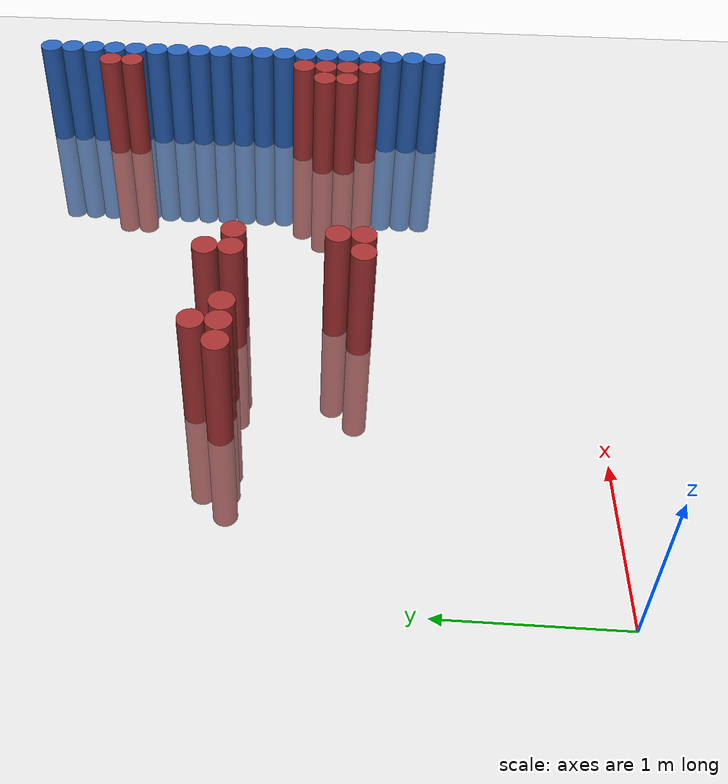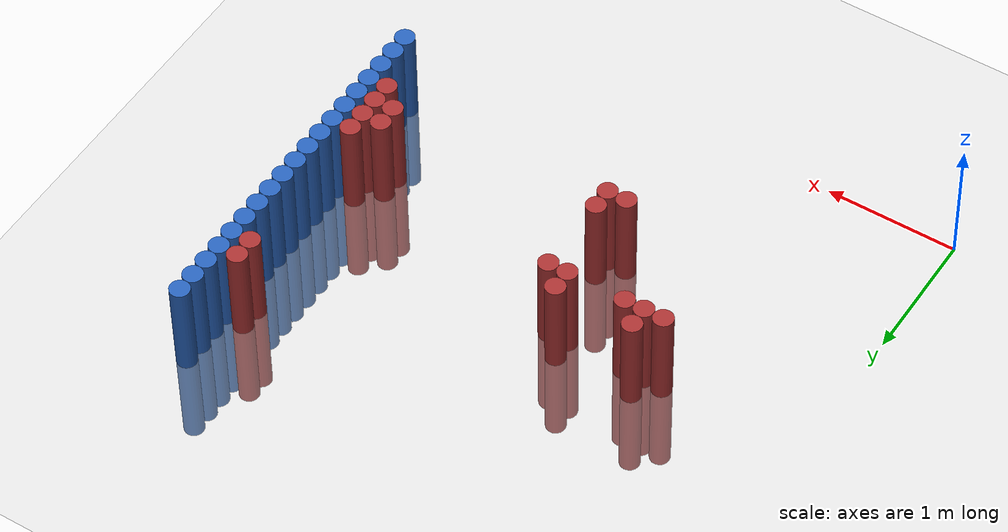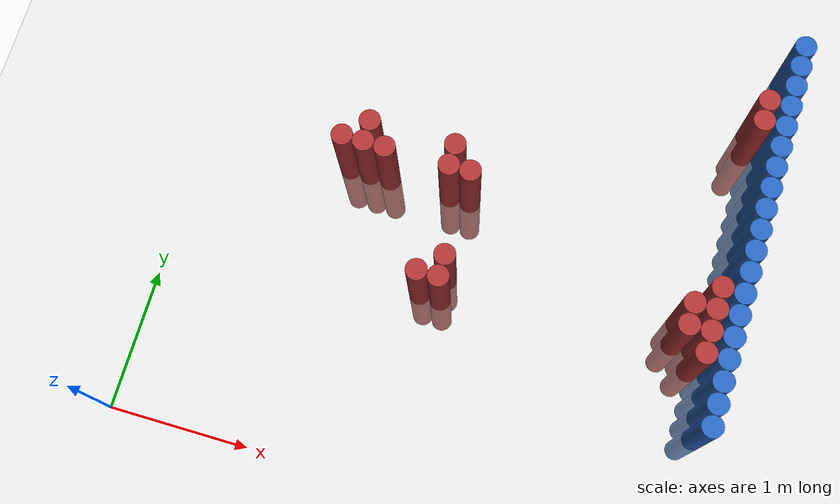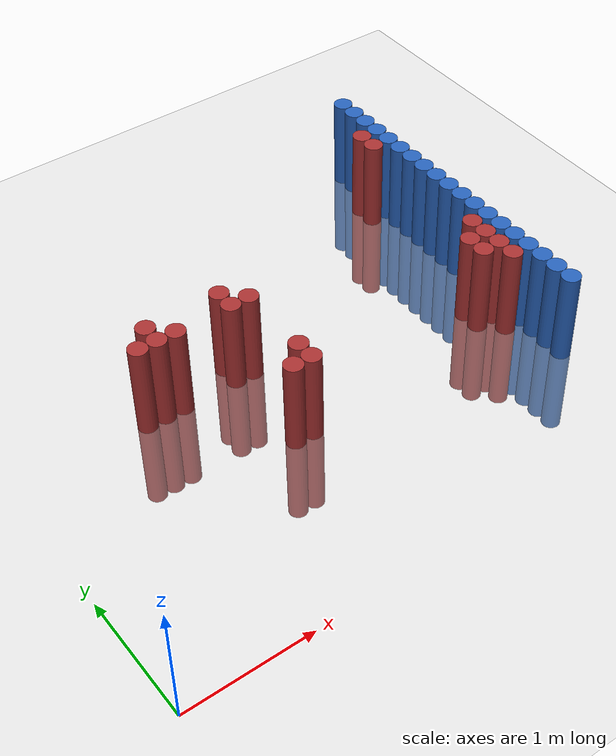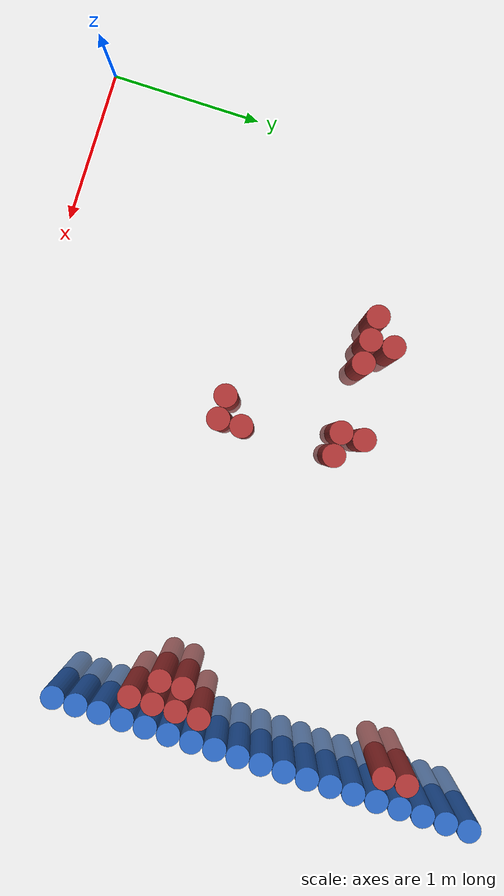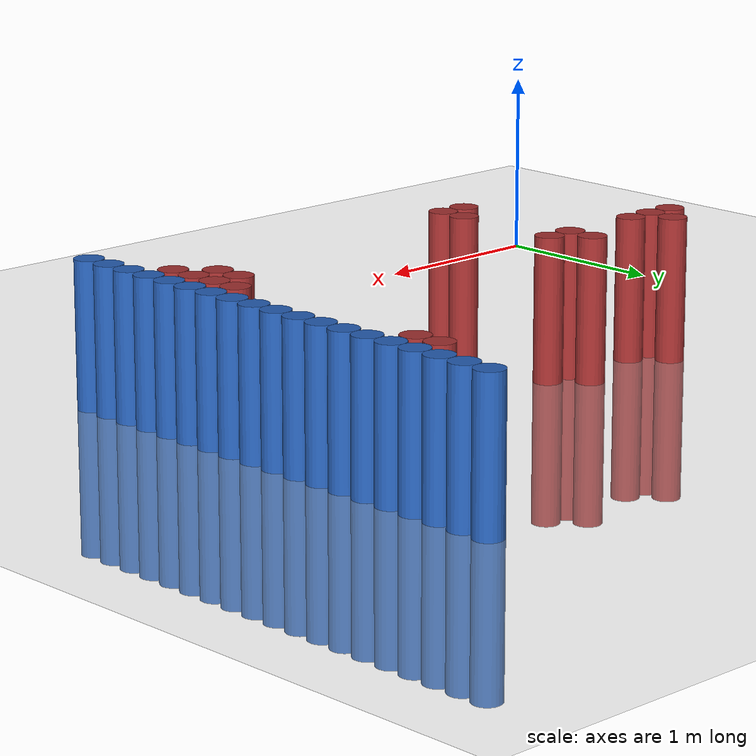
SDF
<sdf version="1.6">
 <world name="default">
  <model name="ground_plane">
   <static>1</static>
   <link name="link">
    <collision name="collision">
     <geometry><plane><normal>0 0 1</normal><size>100 100</size></plane></geometry>
     <surface><friction><ode><mu>100</mu><mu2>50</mu2></ode></friction></surface>
    </collision>
    <visual name="visual">
     <cast_shadows>0</cast_shadows>
     <geometry><plane><normal>0 0 1</normal><size>100 100</size></plane></geometry>
     <material>
      <script><uri>file://media/materials/scripts/gazebo.material</uri><name>Gazebo/Grey</name></script>
     </material>
    </visual>
   </link>
  </model>
  <model name="unit_cylinder_128">
   <static>1</static>
   <pose>3.925000 1.075000 0.000000 0.000000 0.000000 0.000000</pose>
   <link name="link">
    <inertial>
     <mass>1</mass>
     <inertia><ixx>0.145833</ixx><ixy>0</ixy><ixz>0</ixz><iyy>0.145833</iyy><iyz>0</iyz><izz>0.125</izz></inertia>
    </inertial>
    <collision name="collision">
     <geometry><cylinder><radius>0.075000</radius><length>1.5</length></cylinder></geometry>
    </collision>
    <visual name="visual">
     <geometry><cylinder><radius>0.075000</radius><length>1.5</length></cylinder></geometry>
     <material>
      <ambient>0.152000 0.379000 0.720000 1</ambient>
      <diffuse>0.152000 0.379000 0.720000 1</diffuse>
     </material>
     <material>
      <script><name>Gazebo/Grey</name><uri>file://media/materials/scripts/gazebo.material</uri></script>
     </material>
    </visual>
   </link>
  </model>
  <model name="unit_cylinder_130">
   <static>1</static>
   <pose>3.925000 1.225000 0.000000 0.000000 0.000000 0.000000</pose>
   <link name="link">
    <inertial>
     <mass>1</mass>
     <inertia><ixx>0.145833</ixx><ixy>0</ixy><ixz>0</ixz><iyy>0.145833</iyy><iyz>0</iyz><izz>0.125</izz></inertia>
    </inertial>
    <collision name="collision">
     <geometry><cylinder><radius>0.075000</radius><length>1.5</length></cylinder></geometry>
    </collision>
    <visual name="visual">
     <geometry><cylinder><radius>0.075000</radius><length>1.5</length></cylinder></geometry>
     <material>
      <ambient>0.152000 0.379000 0.720000 1</ambient>
      <diffuse>0.152000 0.379000 0.720000 1</diffuse>
     </material>
     <material>
      <script><name>Gazebo/Grey</name><uri>file://media/materials/scripts/gazebo.material</uri></script>
     </material>
    </visual>
   </link>
  </model>
  <model name="unit_cylinder_132">
   <static>1</static>
   <pose>3.925000 1.375000 0.000000 0.000000 0.000000 0.000000</pose>
   <link name="link">
    <inertial>
     <mass>1</mass>
     <inertia><ixx>0.145833</ixx><ixy>0</ixy><ixz>0</ixz><iyy>0.145833</iyy><iyz>0</iyz><izz>0.125</izz></inertia>
    </inertial>
    <collision name="collision">
     <geometry><cylinder><radius>0.075000</radius><length>1.5</length></cylinder></geometry>
    </collision>
    <visual name="visual">
     <geometry><cylinder><radius>0.075000</radius><length>1.5</length></cylinder></geometry>
     <material>
      <ambient>0.152000 0.379000 0.720000 1</ambient>
      <diffuse>0.152000 0.379000 0.720000 1</diffuse>
     </material>
     <material>
      <script><name>Gazebo/Grey</name><uri>file://media/materials/scripts/gazebo.material</uri></script>
     </material>
    </visual>
   </link>
  </model>
  <model name="unit_cylinder_134">
   <static>1</static>
   <pose>3.925000 1.525000 0.000000 0.000000 0.000000 0.000000</pose>
   <link name="link">
    <inertial>
     <mass>1</mass>
     <inertia><ixx>0.145833</ixx><ixy>0</ixy><ixz>0</ixz><iyy>0.145833</iyy><iyz>0</iyz><izz>0.125</izz></inertia>
    </inertial>
    <collision name="collision">
     <geometry><cylinder><radius>0.075000</radius><length>1.5</length></cylinder></geometry>
    </collision>
    <visual name="visual">
     <geometry><cylinder><radius>0.075000</radius><length>1.5</length></cylinder></geometry>
     <material>
      <ambient>0.152000 0.379000 0.720000 1</ambient>
      <diffuse>0.152000 0.379000 0.720000 1</diffuse>
     </material>
     <material>
      <script><name>Gazebo/Grey</name><uri>file://media/materials/scripts/gazebo.material</uri></script>
     </material>
    </visual>
   </link>
  </model>
  <model name="unit_cylinder_136">
   <static>1</static>
   <pose>3.925000 1.675000 0.000000 0.000000 0.000000 0.000000</pose>
   <link name="link">
    <inertial>
     <mass>1</mass>
     <inertia><ixx>0.145833</ixx><ixy>0</ixy><ixz>0</ixz><iyy>0.145833</iyy><iyz>0</iyz><izz>0.125</izz></inertia>
    </inertial>
    <collision name="collision">
     <geometry><cylinder><radius>0.075000</radius><length>1.5</length></cylinder></geometry>
    </collision>
    <visual name="visual">
     <geometry><cylinder><radius>0.075000</radius><length>1.5</length></cylinder></geometry>
     <material>
      <ambient>0.152000 0.379000 0.720000 1</ambient>
      <diffuse>0.152000 0.379000 0.720000 1</diffuse>
     </material>
     <material>
      <script><name>Gazebo/Grey</name><uri>file://media/materials/scripts/gazebo.material</uri></script>
     </material>
    </visual>
   </link>
  </model>
  <model name="unit_cylinder_138">
   <static>1</static>
   <pose>3.925000 1.825000 0.000000 0.000000 0.000000 0.000000</pose>
   <link name="link">
    <inertial>
     <mass>1</mass>
     <inertia><ixx>0.145833</ixx><ixy>0</ixy><ixz>0</ixz><iyy>0.145833</iyy><iyz>0</iyz><izz>0.125</izz></inertia>
    </inertial>
    <collision name="collision">
     <geometry><cylinder><radius>0.075000</radius><length>1.5</length></cylinder></geometry>
    </collision>
    <visual name="visual">
     <geometry><cylinder><radius>0.075000</radius><length>1.5</length></cylinder></geometry>
     <material>
      <ambient>0.152000 0.379000 0.720000 1</ambient>
      <diffuse>0.152000 0.379000 0.720000 1</diffuse>
     </material>
     <material>
      <script><name>Gazebo/Grey</name><uri>file://media/materials/scripts/gazebo.material</uri></script>
     </material>
    </visual>
   </link>
  </model>
  <model name="unit_cylinder_140">
   <static>1</static>
   <pose>3.925000 1.975000 0.000000 0.000000 0.000000 0.000000</pose>
   <link name="link">
    <inertial>
     <mass>1</mass>
     <inertia><ixx>0.145833</ixx><ixy>0</ixy><ixz>0</ixz><iyy>0.145833</iyy><iyz>0</iyz><izz>0.125</izz></inertia>
    </inertial>
    <collision name="collision">
     <geometry><cylinder><radius>0.075000</radius><length>1.5</length></cylinder></geometry>
    </collision>
    <visual name="visual">
     <geometry><cylinder><radius>0.075000</radius><length>1.5</length></cylinder></geometry>
     <material>
      <ambient>0.152000 0.379000 0.720000 1</ambient>
      <diffuse>0.152000 0.379000 0.720000 1</diffuse>
     </material>
     <material>
      <script><name>Gazebo/Grey</name><uri>file://media/materials/scripts/gazebo.material</uri></script>
     </material>
    </visual>
   </link>
  </model>
  <model name="unit_cylinder_142">
   <static>1</static>
   <pose>3.925000 2.125000 0.000000 0.000000 0.000000 0.000000</pose>
   <link name="link">
    <inertial>
     <mass>1</mass>
     <inertia><ixx>0.145833</ixx><ixy>0</ixy><ixz>0</ixz><iyy>0.145833</iyy><iyz>0</iyz><izz>0.125</izz></inertia>
    </inertial>
    <collision name="collision">
     <geometry><cylinder><radius>0.075000</radius><length>1.5</length></cylinder></geometry>
    </collision>
    <visual name="visual">
     <geometry><cylinder><radius>0.075000</radius><length>1.5</length></cylinder></geometry>
     <material>
      <ambient>0.152000 0.379000 0.720000 1</ambient>
      <diffuse>0.152000 0.379000 0.720000 1</diffuse>
     </material>
     <material>
      <script><name>Gazebo/Grey</name><uri>file://media/materials/scripts/gazebo.material</uri></script>
     </material>
    </visual>
   </link>
  </model>
  <model name="unit_cylinder_144">
   <static>1</static>
   <pose>3.925000 2.275000 0.000000 0.000000 0.000000 0.000000</pose>
   <link name="link">
    <inertial>
     <mass>1</mass>
     <inertia><ixx>0.145833</ixx><ixy>0</ixy><ixz>0</ixz><iyy>0.145833</iyy><iyz>0</iyz><izz>0.125</izz></inertia>
    </inertial>
    <collision name="collision">
     <geometry><cylinder><radius>0.075000</radius><length>1.5</length></cylinder></geometry>
    </collision>
    <visual name="visual">
     <geometry><cylinder><radius>0.075000</radius><length>1.5</length></cylinder></geometry>
     <material>
      <ambient>0.152000 0.379000 0.720000 1</ambient>
      <diffuse>0.152000 0.379000 0.720000 1</diffuse>
     </material>
     <material>
      <script><name>Gazebo/Grey</name><uri>file://media/materials/scripts/gazebo.material</uri></script>
     </material>
    </visual>
   </link>
  </model>
  <model name="unit_cylinder_146">
   <static>1</static>
   <pose>3.925000 2.425000 0.000000 0.000000 0.000000 0.000000</pose>
   <link name="link">
    <inertial>
     <mass>1</mass>
     <inertia><ixx>0.145833</ixx><ixy>0</ixy><ixz>0</ixz><iyy>0.145833</iyy><iyz>0</iyz><izz>0.125</izz></inertia>
    </inertial>
    <collision name="collision">
     <geometry><cylinder><radius>0.075000</radius><length>1.5</length></cylinder></geometry>
    </collision>
    <visual name="visual">
     <geometry><cylinder><radius>0.075000</radius><length>1.5</length></cylinder></geometry>
     <material>
      <ambient>0.152000 0.379000 0.720000 1</ambient>
      <diffuse>0.152000 0.379000 0.720000 1</diffuse>
     </material>
     <material>
      <script><name>Gazebo/Grey</name><uri>file://media/materials/scripts/gazebo.material</uri></script>
     </material>
    </visual>
   </link>
  </model>
  <model name="unit_cylinder_148">
   <static>1</static>
   <pose>3.925000 2.575000 0.000000 0.000000 0.000000 0.000000</pose>
   <link name="link">
    <inertial>
     <mass>1</mass>
     <inertia><ixx>0.145833</ixx><ixy>0</ixy><ixz>0</ixz><iyy>0.145833</iyy><iyz>0</iyz><izz>0.125</izz></inertia>
    </inertial>
    <collision name="collision">
     <geometry><cylinder><radius>0.075000</radius><length>1.5</length></cylinder></geometry>
    </collision>
    <visual name="visual">
     <geometry><cylinder><radius>0.075000</radius><length>1.5</length></cylinder></geometry>
     <material>
      <ambient>0.152000 0.379000 0.720000 1</ambient>
      <diffuse>0.152000 0.379000 0.720000 1</diffuse>
     </material>
     <material>
      <script><name>Gazebo/Grey</name><uri>file://media/materials/scripts/gazebo.material</uri></script>
     </material>
    </visual>
   </link>
  </model>
  <model name="unit_cylinder_150">
   <static>1</static>
   <pose>3.925000 2.725000 0.000000 0.000000 0.000000 0.000000</pose>
   <link name="link">
    <inertial>
     <mass>1</mass>
     <inertia><ixx>0.145833</ixx><ixy>0</ixy><ixz>0</ixz><iyy>0.145833</iyy><iyz>0</iyz><izz>0.125</izz></inertia>
    </inertial>
    <collision name="collision">
     <geometry><cylinder><radius>0.075000</radius><length>1.5</length></cylinder></geometry>
    </collision>
    <visual name="visual">
     <geometry><cylinder><radius>0.075000</radius><length>1.5</length></cylinder></geometry>
     <material>
      <ambient>0.152000 0.379000 0.720000 1</ambient>
      <diffuse>0.152000 0.379000 0.720000 1</diffuse>
     </material>
     <material>
      <script><name>Gazebo/Grey</name><uri>file://media/materials/scripts/gazebo.material</uri></script>
     </material>
    </visual>
   </link>
  </model>
  <model name="unit_cylinder_152">
   <static>1</static>
   <pose>3.925000 2.875000 0.000000 0.000000 0.000000 0.000000</pose>
   <link name="link">
    <inertial>
     <mass>1</mass>
     <inertia><ixx>0.145833</ixx><ixy>0</ixy><ixz>0</ixz><iyy>0.145833</iyy><iyz>0</iyz><izz>0.125</izz></inertia>
    </inertial>
    <collision name="collision">
     <geometry><cylinder><radius>0.075000</radius><length>1.5</length></cylinder></geometry>
    </collision>
    <visual name="visual">
     <geometry><cylinder><radius>0.075000</radius><length>1.5</length></cylinder></geometry>
     <material>
      <ambient>0.152000 0.379000 0.720000 1</ambient>
      <diffuse>0.152000 0.379000 0.720000 1</diffuse>
     </material>
     <material>
      <script><name>Gazebo/Grey</name><uri>file://media/materials/scripts/gazebo.material</uri></script>
     </material>
    </visual>
   </link>
  </model>
  <model name="unit_cylinder_154">
   <static>1</static>
   <pose>3.925000 3.025000 0.000000 0.000000 0.000000 0.000000</pose>
   <link name="link">
    <inertial>
     <mass>1</mass>
     <inertia><ixx>0.145833</ixx><ixy>0</ixy><ixz>0</ixz><iyy>0.145833</iyy><iyz>0</iyz><izz>0.125</izz></inertia>
    </inertial>
    <collision name="collision">
     <geometry><cylinder><radius>0.075000</radius><length>1.5</length></cylinder></geometry>
    </collision>
    <visual name="visual">
     <geometry><cylinder><radius>0.075000</radius><length>1.5</length></cylinder></geometry>
     <material>
      <ambient>0.152000 0.379000 0.720000 1</ambient>
      <diffuse>0.152000 0.379000 0.720000 1</diffuse>
     </material>
     <material>
      <script><name>Gazebo/Grey</name><uri>file://media/materials/scripts/gazebo.material</uri></script>
     </material>
    </visual>
   </link>
  </model>
  <model name="unit_cylinder_156">
   <static>1</static>
   <pose>3.925000 3.175000 0.000000 0.000000 0.000000 0.000000</pose>
   <link name="link">
    <inertial>
     <mass>1</mass>
     <inertia><ixx>0.145833</ixx><ixy>0</ixy><ixz>0</ixz><iyy>0.145833</iyy><iyz>0</iyz><izz>0.125</izz></inertia>
    </inertial>
    <collision name="collision">
     <geometry><cylinder><radius>0.075000</radius><length>1.5</length></cylinder></geometry>
    </collision>
    <visual name="visual">
     <geometry><cylinder><radius>0.075000</radius><length>1.5</length></cylinder></geometry>
     <material>
      <ambient>0.152000 0.379000 0.720000 1</ambient>
      <diffuse>0.152000 0.379000 0.720000 1</diffuse>
     </material>
     <material>
      <script><name>Gazebo/Grey</name><uri>file://media/materials/scripts/gazebo.material</uri></script>
     </material>
    </visual>
   </link>
  </model>
  <model name="unit_cylinder_158">
   <static>1</static>
   <pose>3.925000 3.325000 0.000000 0.000000 0.000000 0.000000</pose>
   <link name="link">
    <inertial>
     <mass>1</mass>
     <inertia><ixx>0.145833</ixx><ixy>0</ixy><ixz>0</ixz><iyy>0.145833</iyy><iyz>0</iyz><izz>0.125</izz></inertia>
    </inertial>
    <collision name="collision">
     <geometry><cylinder><radius>0.075000</radius><length>1.5</length></cylinder></geometry>
    </collision>
    <visual name="visual">
     <geometry><cylinder><radius>0.075000</radius><length>1.5</length></cylinder></geometry>
     <material>
      <ambient>0.152000 0.379000 0.720000 1</ambient>
      <diffuse>0.152000 0.379000 0.720000 1</diffuse>
     </material>
     <material>
      <script><name>Gazebo/Grey</name><uri>file://media/materials/scripts/gazebo.material</uri></script>
     </material>
    </visual>
   </link>
  </model>
  <model name="unit_cylinder_160">
   <static>1</static>
   <pose>3.925000 3.475000 0.000000 0.000000 0.000000 0.000000</pose>
   <link name="link">
    <inertial>
     <mass>1</mass>
     <inertia><ixx>0.145833</ixx><ixy>0</ixy><ixz>0</ixz><iyy>0.145833</iyy><iyz>0</iyz><izz>0.125</izz></inertia>
    </inertial>
    <collision name="collision">
     <geometry><cylinder><radius>0.075000</radius><length>1.5</length></cylinder></geometry>
    </collision>
    <visual name="visual">
     <geometry><cylinder><radius>0.075000</radius><length>1.5</length></cylinder></geometry>
     <material>
      <ambient>0.152000 0.379000 0.720000 1</ambient>
      <diffuse>0.152000 0.379000 0.720000 1</diffuse>
     </material>
     <material>
      <script><name>Gazebo/Grey</name><uri>file://media/materials/scripts/gazebo.material</uri></script>
     </material>
    </visual>
   </link>
  </model>
  <model name="unit_cylinder_162">
   <static>1</static>
   <pose>3.925000 3.625000 0.000000 0.000000 0.000000 0.000000</pose>
   <link name="link">
    <inertial>
     <mass>1</mass>
     <inertia><ixx>0.145833</ixx><ixy>0</ixy><ixz>0</ixz><iyy>0.145833</iyy><iyz>0</iyz><izz>0.125</izz></inertia>
    </inertial>
    <collision name="collision">
     <geometry><cylinder><radius>0.075000</radius><length>1.5</length></cylinder></geometry>
    </collision>
    <visual name="visual">
     <geometry><cylinder><radius>0.075000</radius><length>1.5</length></cylinder></geometry>
     <material>
      <ambient>0.152000 0.379000 0.720000 1</ambient>
      <diffuse>0.152000 0.379000 0.720000 1</diffuse>
     </material>
     <material>
      <script><name>Gazebo/Grey</name><uri>file://media/materials/scripts/gazebo.material</uri></script>
     </material>
    </visual>
   </link>
  </model>
  <model name="unit_cylinder_333">
   <static>1</static>
   <pose>1.075000 2.125000 0.000000 0.000000 0.000000 0.000000</pose>
   <link name="link">
    <inertial>
     <mass>1</mass>
     <inertia><ixx>0.145833</ixx><ixy>0</ixy><ixz>0</ixz><iyy>0.145833</iyy><iyz>0</iyz><izz>0.125</izz></inertia>
    </inertial>
    <collision name="collision">
     <geometry><cylinder><radius>0.075000</radius><length>1.5</length></cylinder></geometry>
    </collision>
    <visual name="visual">
     <geometry><cylinder><radius>0.075000</radius><length>1.5</length></cylinder></geometry>
     <material>
      <ambient>0.648000 0.192000 0.192000 1</ambient>
      <diffuse>0.648000 0.192000 0.192000 1</diffuse>
     </material>
     <material>
      <script><name>Gazebo/Grey</name><uri>file://media/materials/scripts/gazebo.material</uri></script>
     </material>
    </visual>
   </link>
  </model>
  <model name="unit_cylinder_338">
   <static>1</static>
   <pose>1.225000 2.125000 0.000000 0.000000 0.000000 0.000000</pose>
   <link name="link">
    <inertial>
     <mass>1</mass>
     <inertia><ixx>0.145833</ixx><ixy>0</ixy><ixz>0</ixz><iyy>0.145833</iyy><iyz>0</iyz><izz>0.125</izz></inertia>
    </inertial>
    <collision name="collision">
     <geometry><cylinder><radius>0.075000</radius><length>1.5</length></cylinder></geometry>
    </collision>
    <visual name="visual">
     <geometry><cylinder><radius>0.075000</radius><length>1.5</length></cylinder></geometry>
     <material>
      <ambient>0.648000 0.192000 0.192000 1</ambient>
      <diffuse>0.648000 0.192000 0.192000 1</diffuse>
     </material>
     <material>
      <script><name>Gazebo/Grey</name><uri>file://media/materials/scripts/gazebo.material</uri></script>
     </material>
    </visual>
   </link>
  </model>
  <model name="unit_cylinder_339">
   <static>1</static>
   <pose>1.225000 2.275000 0.000000 0.000000 0.000000 0.000000</pose>
   <link name="link">
    <inertial>
     <mass>1</mass>
     <inertia><ixx>0.145833</ixx><ixy>0</ixy><ixz>0</ixz><iyy>0.145833</iyy><iyz>0</iyz><izz>0.125</izz></inertia>
    </inertial>
    <collision name="collision">
     <geometry><cylinder><radius>0.075000</radius><length>1.5</length></cylinder></geometry>
    </collision>
    <visual name="visual">
     <geometry><cylinder><radius>0.075000</radius><length>1.5</length></cylinder></geometry>
     <material>
      <ambient>0.648000 0.192000 0.192000 1</ambient>
      <diffuse>0.648000 0.192000 0.192000 1</diffuse>
     </material>
     <material>
      <script><name>Gazebo/Grey</name><uri>file://media/materials/scripts/gazebo.material</uri></script>
     </material>
    </visual>
   </link>
  </model>
  <model name="unit_cylinder_344">
   <static>1</static>
   <pose>1.375000 2.125000 0.000000 0.000000 0.000000 0.000000</pose>
   <link name="link">
    <inertial>
     <mass>1</mass>
     <inertia><ixx>0.145833</ixx><ixy>0</ixy><ixz>0</ixz><iyy>0.145833</iyy><iyz>0</iyz><izz>0.125</izz></inertia>
    </inertial>
    <collision name="collision">
     <geometry><cylinder><radius>0.075000</radius><length>1.5</length></cylinder></geometry>
    </collision>
    <visual name="visual">
     <geometry><cylinder><radius>0.075000</radius><length>1.5</length></cylinder></geometry>
     <material>
      <ambient>0.648000 0.192000 0.192000 1</ambient>
      <diffuse>0.648000 0.192000 0.192000 1</diffuse>
     </material>
     <material>
      <script><name>Gazebo/Grey</name><uri>file://media/materials/scripts/gazebo.material</uri></script>
     </material>
    </visual>
   </link>
  </model>
  <model name="unit_cylinder_346">
   <static>1</static>
   <pose>1.825000 1.375000 0.000000 0.000000 0.000000 0.000000</pose>
   <link name="link">
    <inertial>
     <mass>1</mass>
     <inertia><ixx>0.145833</ixx><ixy>0</ixy><ixz>0</ixz><iyy>0.145833</iyy><iyz>0</iyz><izz>0.125</izz></inertia>
    </inertial>
    <collision name="collision">
     <geometry><cylinder><radius>0.075000</radius><length>1.5</length></cylinder></geometry>
    </collision>
    <visual name="visual">
     <geometry><cylinder><radius>0.075000</radius><length>1.5</length></cylinder></geometry>
     <material>
      <ambient>0.648000 0.192000 0.192000 1</ambient>
      <diffuse>0.648000 0.192000 0.192000 1</diffuse>
     </material>
     <material>
      <script><name>Gazebo/Grey</name><uri>file://media/materials/scripts/gazebo.material</uri></script>
     </material>
    </visual>
   </link>
  </model>
  <model name="unit_cylinder_347">
   <static>1</static>
   <pose>1.825000 2.125000 0.000000 0.000000 0.000000 0.000000</pose>
   <link name="link">
    <inertial>
     <mass>1</mass>
     <inertia><ixx>0.145833</ixx><ixy>0</ixy><ixz>0</ixz><iyy>0.145833</iyy><iyz>0</iyz><izz>0.125</izz></inertia>
    </inertial>
    <collision name="collision">
     <geometry><cylinder><radius>0.075000</radius><length>1.5</length></cylinder></geometry>
    </collision>
    <visual name="visual">
     <geometry><cylinder><radius>0.075000</radius><length>1.5</length></cylinder></geometry>
     <material>
      <ambient>0.648000 0.192000 0.192000 1</ambient>
      <diffuse>0.648000 0.192000 0.192000 1</diffuse>
     </material>
     <material>
      <script><name>Gazebo/Grey</name><uri>file://media/materials/scripts/gazebo.material</uri></script>
     </material>
    </visual>
   </link>
  </model>
  <model name="unit_cylinder_348">
   <static>1</static>
   <pose>1.825000 2.275000 0.000000 0.000000 0.000000 0.000000</pose>
   <link name="link">
    <inertial>
     <mass>1</mass>
     <inertia><ixx>0.145833</ixx><ixy>0</ixy><ixz>0</ixz><iyy>0.145833</iyy><iyz>0</iyz><izz>0.125</izz></inertia>
    </inertial>
    <collision name="collision">
     <geometry><cylinder><radius>0.075000</radius><length>1.5</length></cylinder></geometry>
    </collision>
    <visual name="visual">
     <geometry><cylinder><radius>0.075000</radius><length>1.5</length></cylinder></geometry>
     <material>
      <ambient>0.648000 0.192000 0.192000 1</ambient>
      <diffuse>0.648000 0.192000 0.192000 1</diffuse>
     </material>
     <material>
      <script><name>Gazebo/Grey</name><uri>file://media/materials/scripts/gazebo.material</uri></script>
     </material>
    </visual>
   </link>
  </model>
  <model name="unit_cylinder_351">
   <static>1</static>
   <pose>1.975000 1.375000 0.000000 0.000000 0.000000 0.000000</pose>
   <link name="link">
    <inertial>
     <mass>1</mass>
     <inertia><ixx>0.145833</ixx><ixy>0</ixy><ixz>0</ixz><iyy>0.145833</iyy><iyz>0</iyz><izz>0.125</izz></inertia>
    </inertial>
    <collision name="collision">
     <geometry><cylinder><radius>0.075000</radius><length>1.5</length></cylinder></geometry>
    </collision>
    <visual name="visual">
     <geometry><cylinder><radius>0.075000</radius><length>1.5</length></cylinder></geometry>
     <material>
      <ambient>0.648000 0.192000 0.192000 1</ambient>
      <diffuse>0.648000 0.192000 0.192000 1</diffuse>
     </material>
     <material>
      <script><name>Gazebo/Grey</name><uri>file://media/materials/scripts/gazebo.material</uri></script>
     </material>
    </visual>
   </link>
  </model>
  <model name="unit_cylinder_352">
   <static>1</static>
   <pose>1.975000 1.525000 0.000000 0.000000 0.000000 0.000000</pose>
   <link name="link">
    <inertial>
     <mass>1</mass>
     <inertia><ixx>0.145833</ixx><ixy>0</ixy><ixz>0</ixz><iyy>0.145833</iyy><iyz>0</iyz><izz>0.125</izz></inertia>
    </inertial>
    <collision name="collision">
     <geometry><cylinder><radius>0.075000</radius><length>1.5</length></cylinder></geometry>
    </collision>
    <visual name="visual">
     <geometry><cylinder><radius>0.075000</radius><length>1.5</length></cylinder></geometry>
     <material>
      <ambient>0.648000 0.192000 0.192000 1</ambient>
      <diffuse>0.648000 0.192000 0.192000 1</diffuse>
     </material>
     <material>
      <script><name>Gazebo/Grey</name><uri>file://media/materials/scripts/gazebo.material</uri></script>
     </material>
    </visual>
   </link>
  </model>
  <model name="unit_cylinder_353">
   <static>1</static>
   <pose>1.975000 2.125000 0.000000 0.000000 0.000000 0.000000</pose>
   <link name="link">
    <inertial>
     <mass>1</mass>
     <inertia><ixx>0.145833</ixx><ixy>0</ixy><ixz>0</ixz><iyy>0.145833</iyy><iyz>0</iyz><izz>0.125</izz></inertia>
    </inertial>
    <collision name="collision">
     <geometry><cylinder><radius>0.075000</radius><length>1.5</length></cylinder></geometry>
    </collision>
    <visual name="visual">
     <geometry><cylinder><radius>0.075000</radius><length>1.5</length></cylinder></geometry>
     <material>
      <ambient>0.648000 0.192000 0.192000 1</ambient>
      <diffuse>0.648000 0.192000 0.192000 1</diffuse>
     </material>
     <material>
      <script><name>Gazebo/Grey</name><uri>file://media/materials/scripts/gazebo.material</uri></script>
     </material>
    </visual>
   </link>
  </model>
  <model name="unit_cylinder_365">
   <static>1</static>
   <pose>3.625000 1.525000 0.000000 0.000000 0.000000 0.000000</pose>
   <link name="link">
    <inertial>
     <mass>1</mass>
     <inertia><ixx>0.145833</ixx><ixy>0</ixy><ixz>0</ixz><iyy>0.145833</iyy><iyz>0</iyz><izz>0.125</izz></inertia>
    </inertial>
    <collision name="collision">
     <geometry><cylinder><radius>0.075000</radius><length>1.5</length></cylinder></geometry>
    </collision>
    <visual name="visual">
     <geometry><cylinder><radius>0.075000</radius><length>1.5</length></cylinder></geometry>
     <material>
      <ambient>0.648000 0.192000 0.192000 1</ambient>
      <diffuse>0.648000 0.192000 0.192000 1</diffuse>
     </material>
     <material>
      <script><name>Gazebo/Grey</name><uri>file://media/materials/scripts/gazebo.material</uri></script>
     </material>
    </visual>
   </link>
  </model>
  <model name="unit_cylinder_366">
   <static>1</static>
   <pose>3.625000 1.675000 0.000000 0.000000 0.000000 0.000000</pose>
   <link name="link">
    <inertial>
     <mass>1</mass>
     <inertia><ixx>0.145833</ixx><ixy>0</ixy><ixz>0</ixz><iyy>0.145833</iyy><iyz>0</iyz><izz>0.125</izz></inertia>
    </inertial>
    <collision name="collision">
     <geometry><cylinder><radius>0.075000</radius><length>1.5</length></cylinder></geometry>
    </collision>
    <visual name="visual">
     <geometry><cylinder><radius>0.075000</radius><length>1.5</length></cylinder></geometry>
     <material>
      <ambient>0.648000 0.192000 0.192000 1</ambient>
      <diffuse>0.648000 0.192000 0.192000 1</diffuse>
     </material>
     <material>
      <script><name>Gazebo/Grey</name><uri>file://media/materials/scripts/gazebo.material</uri></script>
     </material>
    </visual>
   </link>
  </model>
  <model name="unit_cylinder_374">
   <static>1</static>
   <pose>3.775000 1.375000 0.000000 0.000000 0.000000 0.000000</pose>
   <link name="link">
    <inertial>
     <mass>1</mass>
     <inertia><ixx>0.145833</ixx><ixy>0</ixy><ixz>0</ixz><iyy>0.145833</iyy><iyz>0</iyz><izz>0.125</izz></inertia>
    </inertial>
    <collision name="collision">
     <geometry><cylinder><radius>0.075000</radius><length>1.5</length></cylinder></geometry>
    </collision>
    <visual name="visual">
     <geometry><cylinder><radius>0.075000</radius><length>1.5</length></cylinder></geometry>
     <material>
      <ambient>0.648000 0.192000 0.192000 1</ambient>
      <diffuse>0.648000 0.192000 0.192000 1</diffuse>
     </material>
     <material>
      <script><name>Gazebo/Grey</name><uri>file://media/materials/scripts/gazebo.material</uri></script>
     </material>
    </visual>
   </link>
  </model>
  <model name="unit_cylinder_375">
   <static>1</static>
   <pose>3.775000 1.525000 0.000000 0.000000 0.000000 0.000000</pose>
   <link name="link">
    <inertial>
     <mass>1</mass>
     <inertia><ixx>0.145833</ixx><ixy>0</ixy><ixz>0</ixz><iyy>0.145833</iyy><iyz>0</iyz><izz>0.125</izz></inertia>
    </inertial>
    <collision name="collision">
     <geometry><cylinder><radius>0.075000</radius><length>1.5</length></cylinder></geometry>
    </collision>
    <visual name="visual">
     <geometry><cylinder><radius>0.075000</radius><length>1.5</length></cylinder></geometry>
     <material>
      <ambient>0.648000 0.192000 0.192000 1</ambient>
      <diffuse>0.648000 0.192000 0.192000 1</diffuse>
     </material>
     <material>
      <script><name>Gazebo/Grey</name><uri>file://media/materials/scripts/gazebo.material</uri></script>
     </material>
    </visual>
   </link>
  </model>
  <model name="unit_cylinder_376">
   <static>1</static>
   <pose>3.775000 1.675000 0.000000 0.000000 0.000000 0.000000</pose>
   <link name="link">
    <inertial>
     <mass>1</mass>
     <inertia><ixx>0.145833</ixx><ixy>0</ixy><ixz>0</ixz><iyy>0.145833</iyy><iyz>0</iyz><izz>0.125</izz></inertia>
    </inertial>
    <collision name="collision">
     <geometry><cylinder><radius>0.075000</radius><length>1.5</length></cylinder></geometry>
    </collision>
    <visual name="visual">
     <geometry><cylinder><radius>0.075000</radius><length>1.5</length></cylinder></geometry>
     <material>
      <ambient>0.648000 0.192000 0.192000 1</ambient>
      <diffuse>0.648000 0.192000 0.192000 1</diffuse>
     </material>
     <material>
      <script><name>Gazebo/Grey</name><uri>file://media/materials/scripts/gazebo.material</uri></script>
     </material>
    </visual>
   </link>
  </model>
  <model name="unit_cylinder_377">
   <static>1</static>
   <pose>3.775000 1.825000 0.000000 0.000000 0.000000 0.000000</pose>
   <link name="link">
    <inertial>
     <mass>1</mass>
     <inertia><ixx>0.145833</ixx><ixy>0</ixy><ixz>0</ixz><iyy>0.145833</iyy><iyz>0</iyz><izz>0.125</izz></inertia>
    </inertial>
    <collision name="collision">
     <geometry><cylinder><radius>0.075000</radius><length>1.5</length></cylinder></geometry>
    </collision>
    <visual name="visual">
     <geometry><cylinder><radius>0.075000</radius><length>1.5</length></cylinder></geometry>
     <material>
      <ambient>0.648000 0.192000 0.192000 1</ambient>
      <diffuse>0.648000 0.192000 0.192000 1</diffuse>
     </material>
     <material>
      <script><name>Gazebo/Grey</name><uri>file://media/materials/scripts/gazebo.material</uri></script>
     </material>
    </visual>
   </link>
  </model>
  <model name="unit_cylinder_378">
   <static>1</static>
   <pose>3.775000 3.025000 0.000000 0.000000 0.000000 0.000000</pose>
   <link name="link">
    <inertial>
     <mass>1</mass>
     <inertia><ixx>0.145833</ixx><ixy>0</ixy><ixz>0</ixz><iyy>0.145833</iyy><iyz>0</iyz><izz>0.125</izz></inertia>
    </inertial>
    <collision name="collision">
     <geometry><cylinder><radius>0.075000</radius><length>1.5</length></cylinder></geometry>
    </collision>
    <visual name="visual">
     <geometry><cylinder><radius>0.075000</radius><length>1.5</length></cylinder></geometry>
     <material>
      <ambient>0.648000 0.192000 0.192000 1</ambient>
      <diffuse>0.648000 0.192000 0.192000 1</diffuse>
     </material>
     <material>
      <script><name>Gazebo/Grey</name><uri>file://media/materials/scripts/gazebo.material</uri></script>
     </material>
    </visual>
   </link>
  </model>
  <model name="unit_cylinder_379">
   <static>1</static>
   <pose>3.775000 3.175000 0.000000 0.000000 0.000000 0.000000</pose>
   <link name="link">
    <inertial>
     <mass>1</mass>
     <inertia><ixx>0.145833</ixx><ixy>0</ixy><ixz>0</ixz><iyy>0.145833</iyy><iyz>0</iyz><izz>0.125</izz></inertia>
    </inertial>
    <collision name="collision">
     <geometry><cylinder><radius>0.075000</radius><length>1.5</length></cylinder></geometry>
    </collision>
    <visual name="visual">
     <geometry><cylinder><radius>0.075000</radius><length>1.5</length></cylinder></geometry>
     <material>
      <ambient>0.648000 0.192000 0.192000 1</ambient>
      <diffuse>0.648000 0.192000 0.192000 1</diffuse>
     </material>
     <material>
      <script><name>Gazebo/Grey</name><uri>file://media/materials/scripts/gazebo.material</uri></script>
     </material>
    </visual>
   </link>
  </model>
  <model name="unit_cylinder_400">
   <static>1</static>
   <pose>3.925000 0.925000 0.000000 0.000000 0.000000 0.000000</pose>
   <link name="link">
    <inertial>
     <mass>1</mass>
     <inertia><ixx>0.145833</ixx><ixy>0</ixy><ixz>0</ixz><iyy>0.145833</iyy><iyz>0</iyz><izz>0.125</izz></inertia>
    </inertial>
    <collision name="collision">
     <geometry><cylinder><radius>0.075000</radius><length>1.5</length></cylinder></geometry>
    </collision>
    <visual name="visual">
     <geometry><cylinder><radius>0.075000</radius><length>1.5</length></cylinder></geometry>
     <material>
      <ambient>0.152000 0.379000 0.720000 1</ambient>
      <diffuse>0.152000 0.379000 0.720000 1</diffuse>
     </material>
     <material>
      <script><name>Gazebo/Grey</name><uri>file://media/materials/scripts/gazebo.material</uri></script>
     </material>
    </visual>
   </link>
  </model>
  <model name="unit_cylinder_401">
   <static>1</static>
   <pose>3.925000 1.075000 0.000000 0.000000 0.000000 0.000000</pose>
   <link name="link">
    <inertial>
     <mass>1</mass>
     <inertia><ixx>0.145833</ixx><ixy>0</ixy><ixz>0</ixz><iyy>0.145833</iyy><iyz>0</iyz><izz>0.125</izz></inertia>
    </inertial>
    <collision name="collision">
     <geometry><cylinder><radius>0.075000</radius><length>1.5</length></cylinder></geometry>
    </collision>
    <visual name="visual">
     <geometry><cylinder><radius>0.075000</radius><length>1.5</length></cylinder></geometry>
     <material>
      <ambient>0.152000 0.379000 0.720000 1</ambient>
      <diffuse>0.152000 0.379000 0.720000 1</diffuse>
     </material>
     <material>
      <script><name>Gazebo/Grey</name><uri>file://media/materials/scripts/gazebo.material</uri></script>
     </material>
    </visual>
   </link>
  </model>
  <model name="unit_cylinder_402">
   <static>1</static>
   <pose>3.925000 1.225000 0.000000 0.000000 0.000000 0.000000</pose>
   <link name="link">
    <inertial>
     <mass>1</mass>
     <inertia><ixx>0.145833</ixx><ixy>0</ixy><ixz>0</ixz><iyy>0.145833</iyy><iyz>0</iyz><izz>0.125</izz></inertia>
    </inertial>
    <collision name="collision">
     <geometry><cylinder><radius>0.075000</radius><length>1.5</length></cylinder></geometry>
    </collision>
    <visual name="visual">
     <geometry><cylinder><radius>0.075000</radius><length>1.5</length></cylinder></geometry>
     <material>
      <ambient>0.152000 0.379000 0.720000 1</ambient>
      <diffuse>0.152000 0.379000 0.720000 1</diffuse>
     </material>
     <material>
      <script><name>Gazebo/Grey</name><uri>file://media/materials/scripts/gazebo.material</uri></script>
     </material>
    </visual>
   </link>
  </model>
  <model name="unit_cylinder_403">
   <static>1</static>
   <pose>3.925000 1.375000 0.000000 0.000000 0.000000 0.000000</pose>
   <link name="link">
    <inertial>
     <mass>1</mass>
     <inertia><ixx>0.145833</ixx><ixy>0</ixy><ixz>0</ixz><iyy>0.145833</iyy><iyz>0</iyz><izz>0.125</izz></inertia>
    </inertial>
    <collision name="collision">
     <geometry><cylinder><radius>0.075000</radius><length>1.5</length></cylinder></geometry>
    </collision>
    <visual name="visual">
     <geometry><cylinder><radius>0.075000</radius><length>1.5</length></cylinder></geometry>
     <material>
      <ambient>0.152000 0.379000 0.720000 1</ambient>
      <diffuse>0.152000 0.379000 0.720000 1</diffuse>
     </material>
     <material>
      <script><name>Gazebo/Grey</name><uri>file://media/materials/scripts/gazebo.material</uri></script>
     </material>
    </visual>
   </link>
  </model>
  <model name="unit_cylinder_404">
   <static>1</static>
   <pose>3.925000 1.525000 0.000000 0.000000 0.000000 0.000000</pose>
   <link name="link">
    <inertial>
     <mass>1</mass>
     <inertia><ixx>0.145833</ixx><ixy>0</ixy><ixz>0</ixz><iyy>0.145833</iyy><iyz>0</iyz><izz>0.125</izz></inertia>
    </inertial>
    <collision name="collision">
     <geometry><cylinder><radius>0.075000</radius><length>1.5</length></cylinder></geometry>
    </collision>
    <visual name="visual">
     <geometry><cylinder><radius>0.075000</radius><length>1.5</length></cylinder></geometry>
     <material>
      <ambient>0.152000 0.379000 0.720000 1</ambient>
      <diffuse>0.152000 0.379000 0.720000 1</diffuse>
     </material>
     <material>
      <script><name>Gazebo/Grey</name><uri>file://media/materials/scripts/gazebo.material</uri></script>
     </material>
    </visual>
   </link>
  </model>
  <model name="unit_cylinder_405">
   <static>1</static>
   <pose>3.925000 1.675000 0.000000 0.000000 0.000000 0.000000</pose>
   <link name="link">
    <inertial>
     <mass>1</mass>
     <inertia><ixx>0.145833</ixx><ixy>0</ixy><ixz>0</ixz><iyy>0.145833</iyy><iyz>0</iyz><izz>0.125</izz></inertia>
    </inertial>
    <collision name="collision">
     <geometry><cylinder><radius>0.075000</radius><length>1.5</length></cylinder></geometry>
    </collision>
    <visual name="visual">
     <geometry><cylinder><radius>0.075000</radius><length>1.5</length></cylinder></geometry>
     <material>
      <ambient>0.152000 0.379000 0.720000 1</ambient>
      <diffuse>0.152000 0.379000 0.720000 1</diffuse>
     </material>
     <material>
      <script><name>Gazebo/Grey</name><uri>file://media/materials/scripts/gazebo.material</uri></script>
     </material>
    </visual>
   </link>
  </model>
  <model name="unit_cylinder_406">
   <static>1</static>
   <pose>3.925000 1.825000 0.000000 0.000000 0.000000 0.000000</pose>
   <link name="link">
    <inertial>
     <mass>1</mass>
     <inertia><ixx>0.145833</ixx><ixy>0</ixy><ixz>0</ixz><iyy>0.145833</iyy><iyz>0</iyz><izz>0.125</izz></inertia>
    </inertial>
    <collision name="collision">
     <geometry><cylinder><radius>0.075000</radius><length>1.5</length></cylinder></geometry>
    </collision>
    <visual name="visual">
     <geometry><cylinder><radius>0.075000</radius><length>1.5</length></cylinder></geometry>
     <material>
      <ambient>0.152000 0.379000 0.720000 1</ambient>
      <diffuse>0.152000 0.379000 0.720000 1</diffuse>
     </material>
     <material>
      <script><name>Gazebo/Grey</name><uri>file://media/materials/scripts/gazebo.material</uri></script>
     </material>
    </visual>
   </link>
  </model>
  <model name="unit_cylinder_407">
   <static>1</static>
   <pose>3.925000 1.975000 0.000000 0.000000 0.000000 0.000000</pose>
   <link name="link">
    <inertial>
     <mass>1</mass>
     <inertia><ixx>0.145833</ixx><ixy>0</ixy><ixz>0</ixz><iyy>0.145833</iyy><iyz>0</iyz><izz>0.125</izz></inertia>
    </inertial>
    <collision name="collision">
     <geometry><cylinder><radius>0.075000</radius><length>1.5</length></cylinder></geometry>
    </collision>
    <visual name="visual">
     <geometry><cylinder><radius>0.075000</radius><length>1.5</length></cylinder></geometry>
     <material>
      <ambient>0.152000 0.379000 0.720000 1</ambient>
      <diffuse>0.152000 0.379000 0.720000 1</diffuse>
     </material>
     <material>
      <script><name>Gazebo/Grey</name><uri>file://media/materials/scripts/gazebo.material</uri></script>
     </material>
    </visual>
   </link>
  </model>
  <model name="unit_cylinder_408">
   <static>1</static>
   <pose>3.925000 2.125000 0.000000 0.000000 0.000000 0.000000</pose>
   <link name="link">
    <inertial>
     <mass>1</mass>
     <inertia><ixx>0.145833</ixx><ixy>0</ixy><ixz>0</ixz><iyy>0.145833</iyy><iyz>0</iyz><izz>0.125</izz></inertia>
    </inertial>
    <collision name="collision">
     <geometry><cylinder><radius>0.075000</radius><length>1.5</length></cylinder></geometry>
    </collision>
    <visual name="visual">
     <geometry><cylinder><radius>0.075000</radius><length>1.5</length></cylinder></geometry>
     <material>
      <ambient>0.152000 0.379000 0.720000 1</ambient>
      <diffuse>0.152000 0.379000 0.720000 1</diffuse>
     </material>
     <material>
      <script><name>Gazebo/Grey</name><uri>file://media/materials/scripts/gazebo.material</uri></script>
     </material>
    </visual>
   </link>
  </model>
  <model name="unit_cylinder_409">
   <static>1</static>
   <pose>3.925000 2.275000 0.000000 0.000000 0.000000 0.000000</pose>
   <link name="link">
    <inertial>
     <mass>1</mass>
     <inertia><ixx>0.145833</ixx><ixy>0</ixy><ixz>0</ixz><iyy>0.145833</iyy><iyz>0</iyz><izz>0.125</izz></inertia>
    </inertial>
    <collision name="collision">
     <geometry><cylinder><radius>0.075000</radius><length>1.5</length></cylinder></geometry>
    </collision>
    <visual name="visual">
     <geometry><cylinder><radius>0.075000</radius><length>1.5</length></cylinder></geometry>
     <material>
      <ambient>0.152000 0.379000 0.720000 1</ambient>
      <diffuse>0.152000 0.379000 0.720000 1</diffuse>
     </material>
     <material>
      <script><name>Gazebo/Grey</name><uri>file://media/materials/scripts/gazebo.material</uri></script>
     </material>
    </visual>
   </link>
  </model>
  <model name="unit_cylinder_410">
   <static>1</static>
   <pose>3.925000 2.425000 0.000000 0.000000 0.000000 0.000000</pose>
   <link name="link">
    <inertial>
     <mass>1</mass>
     <inertia><ixx>0.145833</ixx><ixy>0</ixy><ixz>0</ixz><iyy>0.145833</iyy><iyz>0</iyz><izz>0.125</izz></inertia>
    </inertial>
    <collision name="collision">
     <geometry><cylinder><radius>0.075000</radius><length>1.5</length></cylinder></geometry>
    </collision>
    <visual name="visual">
     <geometry><cylinder><radius>0.075000</radius><length>1.5</length></cylinder></geometry>
     <material>
      <ambient>0.152000 0.379000 0.720000 1</ambient>
      <diffuse>0.152000 0.379000 0.720000 1</diffuse>
     </material>
     <material>
      <script><name>Gazebo/Grey</name><uri>file://media/materials/scripts/gazebo.material</uri></script>
     </material>
    </visual>
   </link>
  </model>
  <model name="unit_cylinder_411">
   <static>1</static>
   <pose>3.925000 2.575000 0.000000 0.000000 0.000000 0.000000</pose>
   <link name="link">
    <inertial>
     <mass>1</mass>
     <inertia><ixx>0.145833</ixx><ixy>0</ixy><ixz>0</ixz><iyy>0.145833</iyy><iyz>0</iyz><izz>0.125</izz></inertia>
    </inertial>
    <collision name="collision">
     <geometry><cylinder><radius>0.075000</radius><length>1.5</length></cylinder></geometry>
    </collision>
    <visual name="visual">
     <geometry><cylinder><radius>0.075000</radius><length>1.5</length></cylinder></geometry>
     <material>
      <ambient>0.152000 0.379000 0.720000 1</ambient>
      <diffuse>0.152000 0.379000 0.720000 1</diffuse>
     </material>
     <material>
      <script><name>Gazebo/Grey</name><uri>file://media/materials/scripts/gazebo.material</uri></script>
     </material>
    </visual>
   </link>
  </model>
  <model name="unit_cylinder_412">
   <static>1</static>
   <pose>3.925000 2.725000 0.000000 0.000000 0.000000 0.000000</pose>
   <link name="link">
    <inertial>
     <mass>1</mass>
     <inertia><ixx>0.145833</ixx><ixy>0</ixy><ixz>0</ixz><iyy>0.145833</iyy><iyz>0</iyz><izz>0.125</izz></inertia>
    </inertial>
    <collision name="collision">
     <geometry><cylinder><radius>0.075000</radius><length>1.5</length></cylinder></geometry>
    </collision>
    <visual name="visual">
     <geometry><cylinder><radius>0.075000</radius><length>1.5</length></cylinder></geometry>
     <material>
      <ambient>0.152000 0.379000 0.720000 1</ambient>
      <diffuse>0.152000 0.379000 0.720000 1</diffuse>
     </material>
     <material>
      <script><name>Gazebo/Grey</name><uri>file://media/materials/scripts/gazebo.material</uri></script>
     </material>
    </visual>
   </link>
  </model>
  <model name="unit_cylinder_413">
   <static>1</static>
   <pose>3.925000 2.875000 0.000000 0.000000 0.000000 0.000000</pose>
   <link name="link">
    <inertial>
     <mass>1</mass>
     <inertia><ixx>0.145833</ixx><ixy>0</ixy><ixz>0</ixz><iyy>0.145833</iyy><iyz>0</iyz><izz>0.125</izz></inertia>
    </inertial>
    <collision name="collision">
     <geometry><cylinder><radius>0.075000</radius><length>1.5</length></cylinder></geometry>
    </collision>
    <visual name="visual">
     <geometry><cylinder><radius>0.075000</radius><length>1.5</length></cylinder></geometry>
     <material>
      <ambient>0.152000 0.379000 0.720000 1</ambient>
      <diffuse>0.152000 0.379000 0.720000 1</diffuse>
     </material>
     <material>
      <script><name>Gazebo/Grey</name><uri>file://media/materials/scripts/gazebo.material</uri></script>
     </material>
    </visual>
   </link>
  </model>
  <model name="unit_cylinder_414">
   <static>1</static>
   <pose>3.925000 3.025000 0.000000 0.000000 0.000000 0.000000</pose>
   <link name="link">
    <inertial>
     <mass>1</mass>
     <inertia><ixx>0.145833</ixx><ixy>0</ixy><ixz>0</ixz><iyy>0.145833</iyy><iyz>0</iyz><izz>0.125</izz></inertia>
    </inertial>
    <collision name="collision">
     <geometry><cylinder><radius>0.075000</radius><length>1.5</length></cylinder></geometry>
    </collision>
    <visual name="visual">
     <geometry><cylinder><radius>0.075000</radius><length>1.5</length></cylinder></geometry>
     <material>
      <ambient>0.152000 0.379000 0.720000 1</ambient>
      <diffuse>0.152000 0.379000 0.720000 1</diffuse>
     </material>
     <material>
      <script><name>Gazebo/Grey</name><uri>file://media/materials/scripts/gazebo.material</uri></script>
     </material>
    </visual>
   </link>
  </model>
  <model name="unit_cylinder_415">
   <static>1</static>
   <pose>3.925000 3.175000 0.000000 0.000000 0.000000 0.000000</pose>
   <link name="link">
    <inertial>
     <mass>1</mass>
     <inertia><ixx>0.145833</ixx><ixy>0</ixy><ixz>0</ixz><iyy>0.145833</iyy><iyz>0</iyz><izz>0.125</izz></inertia>
    </inertial>
    <collision name="collision">
     <geometry><cylinder><radius>0.075000</radius><length>1.5</length></cylinder></geometry>
    </collision>
    <visual name="visual">
     <geometry><cylinder><radius>0.075000</radius><length>1.5</length></cylinder></geometry>
     <material>
      <ambient>0.152000 0.379000 0.720000 1</ambient>
      <diffuse>0.152000 0.379000 0.720000 1</diffuse>
     </material>
     <material>
      <script><name>Gazebo/Grey</name><uri>file://media/materials/scripts/gazebo.material</uri></script>
     </material>
    </visual>
   </link>
  </model>
  <model name="unit_cylinder_416">
   <static>1</static>
   <pose>3.925000 3.325000 0.000000 0.000000 0.000000 0.000000</pose>
   <link name="link">
    <inertial>
     <mass>1</mass>
     <inertia><ixx>0.145833</ixx><ixy>0</ixy><ixz>0</ixz><iyy>0.145833</iyy><iyz>0</iyz><izz>0.125</izz></inertia>
    </inertial>
    <collision name="collision">
     <geometry><cylinder><radius>0.075000</radius><length>1.5</length></cylinder></geometry>
    </collision>
    <visual name="visual">
     <geometry><cylinder><radius>0.075000</radius><length>1.5</length></cylinder></geometry>
     <material>
      <ambient>0.152000 0.379000 0.720000 1</ambient>
      <diffuse>0.152000 0.379000 0.720000 1</diffuse>
     </material>
     <material>
      <script><name>Gazebo/Grey</name><uri>file://media/materials/scripts/gazebo.material</uri></script>
     </material>
    </visual>
   </link>
  </model>
  <model name="unit_cylinder_417">
   <static>1</static>
   <pose>3.925000 3.475000 0.000000 0.000000 0.000000 0.000000</pose>
   <link name="link">
    <inertial>
     <mass>1</mass>
     <inertia><ixx>0.145833</ixx><ixy>0</ixy><ixz>0</ixz><iyy>0.145833</iyy><iyz>0</iyz><izz>0.125</izz></inertia>
    </inertial>
    <collision name="collision">
     <geometry><cylinder><radius>0.075000</radius><length>1.5</length></cylinder></geometry>
    </collision>
    <visual name="visual">
     <geometry><cylinder><radius>0.075000</radius><length>1.5</length></cylinder></geometry>
     <material>
      <ambient>0.152000 0.379000 0.720000 1</ambient>
      <diffuse>0.152000 0.379000 0.720000 1</diffuse>
     </material>
     <material>
      <script><name>Gazebo/Grey</name><uri>file://media/materials/scripts/gazebo.material</uri></script>
     </material>
    </visual>
   </link>
  </model>
 </world>
</sdf>
